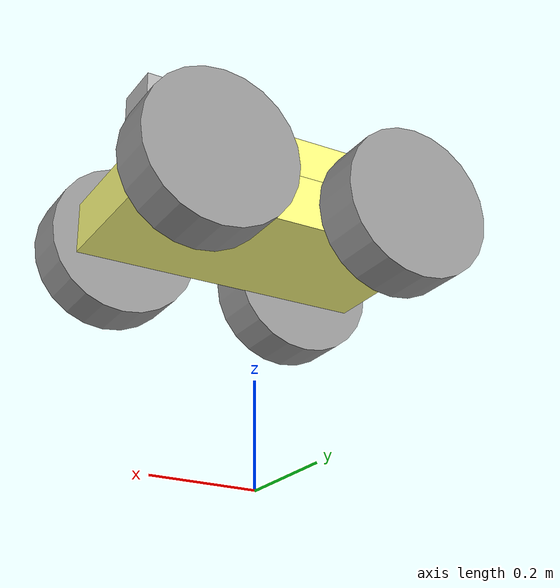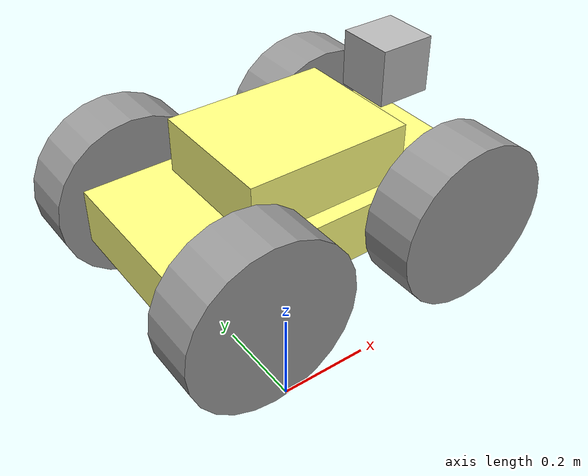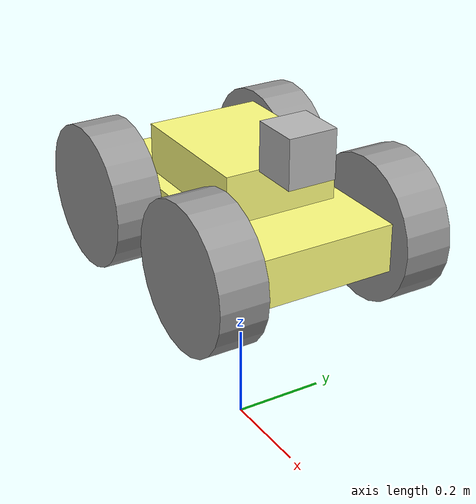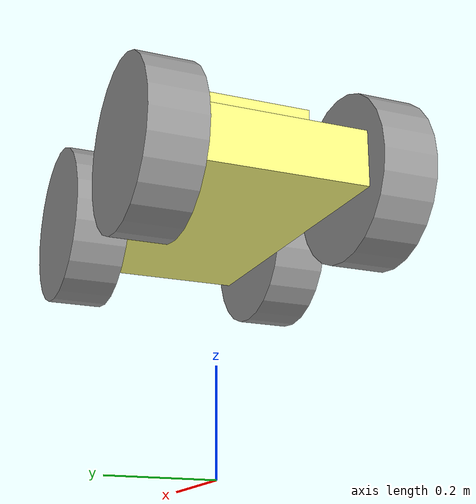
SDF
<?xml version='1.0'?>
<sdf version='1.7'>
  <model name='project_model_v1'>
    <link name='chassis'>
      <inertial>
        <mass>7</mass>
        <inertia>
          <ixx>0.0394333</ixx>
          <ixy>0</ixy>
          <ixz>0</ixz>
          <iyy>0.21491</iyy>
          <iyz>0</iyz>
          <izz>0.242677</izz>
        </inertia>
        <pose>0 0 0 0 -0 0</pose>
      </inertial>
      <pose>0 0 0.5 0 -0 0</pose>
      <self_collide>0</self_collide>
      <enable_wind>0</enable_wind>
      <kinematic>0</kinematic>
      <gravity>1</gravity>
      <visual name='visual'>
        <pose>0 0 0 0 -0 0</pose>
        <geometry>
          <box>
            <size>0.59868 0.3 0.1</size>
          </box>
        </geometry>
        <material>
          <lighting>1</lighting>
          <script>
            <uri>file://media/materials/scripts/gazebo.material</uri>
            <name>Gazebo/Grey</name>
          </script>
          <shader type='pixel'>
            <normal_map>__default__</normal_map>
          </shader>
          <emissive>0 0 0 1</emissive>
          <ambient>1 1 0.5 1</ambient>
          <diffuse>1 1 0.5 1</diffuse>
          <specular>0.01 0.01 0.01 1</specular>
        </material>
        <transparency>0</transparency>
        <cast_shadows>1</cast_shadows>
      </visual>
      <visual name='ModelPreview_1::chassis::visual_1'>
        <pose>0 0 0 0 -0 0</pose>
        <geometry>
          <box>
            <size>0.59868 0.3 0.1</size>
          </box>
        </geometry>
        <material>
          <lighting>1</lighting>
          <script>
            <uri>file://media/materials/scripts/gazebo.material</uri>
            <name>Gazebo/Grey</name>
          </script>
          <shader type='pixel'>
            <normal_map>__default__</normal_map>
          </shader>
          <emissive>0 0 0 1</emissive>
          <ambient>1 1 0.5 1</ambient>
          <diffuse>1 1 0.5 1</diffuse>
          <specular>0.01 0.01 0.01 1</specular>
        </material>
        <transparency>0</transparency>
        <cast_shadows>1</cast_shadows>
      </visual>
      <collision name='collision'>
        <laser_retro>0</laser_retro>
        <max_contacts>10</max_contacts>
        <pose>0 0 0 0 -0 0</pose>
        <geometry>
          <box>
            <size>0.59868 0.24 0.1</size>
          </box>
        </geometry>
        <surface>
          <friction>
            <ode>
              <mu>1</mu>
              <mu2>1</mu2>
              <fdir1>0 0 0</fdir1>
              <slip1>0</slip1>
              <slip2>0</slip2>
            </ode>
            <torsional>
              <coefficient>1</coefficient>
              <patch_radius>0</patch_radius>
              <surface_radius>0</surface_radius>
              <use_patch_radius>1</use_patch_radius>
              <ode>
                <slip>0</slip>
              </ode>
            </torsional>
          </friction>
          <bounce>
            <restitution_coefficient>0</restitution_coefficient>
            <threshold>1e+06</threshold>
          </bounce>
          <contact>
            <collide_without_contact>0</collide_without_contact>
            <collide_without_contact_bitmask>1</collide_without_contact_bitmask>
            <collide_bitmask>1</collide_bitmask>
            <ode>
              <soft_cfm>0</soft_cfm>
              <soft_erp>0.2</soft_erp>
              <kp>1e+13</kp>
              <kd>1</kd>
              <max_vel>0.01</max_vel>
              <min_depth>0</min_depth>
            </ode>
            <bullet>
              <split_impulse>1</split_impulse>
              <split_impulse_penetration_threshold>-0.01</split_impulse_penetration_threshold>
              <soft_cfm>0</soft_cfm>
              <soft_erp>0.2</soft_erp>
              <kp>1e+13</kp>
              <kd>1</kd>
            </bullet>
          </contact>
        </surface>
      </collision>
    </link>
    <link name='left_back_wheel'>
      <inertial>
        <mass>1</mass>
        <inertia>
          <ixx>0.00645833</ixx>
          <ixy>0</ixy>
          <ixz>0</ixz>
          <iyy>0.00645833</iyy>
          <iyz>0</iyz>
          <izz>0.01125</izz>
        </inertia>
        <pose>0 0 0 0 -0 0</pose>
      </inertial>
      <pose>-0.2 0.2 0.5 1.5707 2.8e-05 0.004847</pose>
      <gravity>1</gravity>
      <self_collide>0</self_collide>
      <kinematic>0</kinematic>
      <enable_wind>0</enable_wind>
      <visual name='visual'>
        <pose>0 0 0 0 -0 0</pose>
        <geometry>
          <cylinder>
            <radius>0.15</radius>
            <length>0.1</length>
          </cylinder>
        </geometry>
        <material>
          <lighting>1</lighting>
          <script>
            <uri>file://media/materials/scripts/gazebo.material</uri>
            <name>Gazebo/Grey</name>
          </script>
          <shader type='pixel'>
            <normal_map>__default__</normal_map>
          </shader>
          <ambient>0 0 0 1</ambient>
          <diffuse>0 0 0 1</diffuse>
          <specular>0.01 0.01 0.01 1</specular>
          <emissive>0 0 0 1</emissive>
        </material>
        <transparency>0</transparency>
        <cast_shadows>1</cast_shadows>
      </visual>
      <collision name='collision'>
        <laser_retro>0</laser_retro>
        <max_contacts>10</max_contacts>
        <pose>0 0 0 0 -0 0</pose>
        <geometry>
          <cylinder>
            <radius>0.15</radius>
            <length>0.1</length>
          </cylinder>
        </geometry>
        <surface>
          <friction>
            <ode>
              <mu>1</mu>
              <mu2>1</mu2>
              <fdir1>0 0 0</fdir1>
              <slip1>0</slip1>
              <slip2>0</slip2>
            </ode>
            <torsional>
              <coefficient>1</coefficient>
              <patch_radius>0</patch_radius>
              <surface_radius>0</surface_radius>
              <use_patch_radius>1</use_patch_radius>
              <ode>
                <slip>0</slip>
              </ode>
            </torsional>
          </friction>
          <bounce>
            <restitution_coefficient>0</restitution_coefficient>
            <threshold>1e+06</threshold>
          </bounce>
          <contact>
            <collide_without_contact>0</collide_without_contact>
            <collide_without_contact_bitmask>1</collide_without_contact_bitmask>
            <collide_bitmask>1</collide_bitmask>
            <ode>
              <soft_cfm>0</soft_cfm>
              <soft_erp>0.2</soft_erp>
              <kp>1e+13</kp>
              <kd>1</kd>
              <max_vel>0.01</max_vel>
              <min_depth>0</min_depth>
            </ode>
            <bullet>
              <split_impulse>1</split_impulse>
              <split_impulse_penetration_threshold>-0.01</split_impulse_penetration_threshold>
              <soft_cfm>0</soft_cfm>
              <soft_erp>0.2</soft_erp>
              <kp>1e+13</kp>
              <kd>1</kd>
            </bullet>
          </contact>
        </surface>
      </collision>
    </link>
    <link name='left_wheel'>
      <inertial>
        <mass>1</mass>
        <inertia>
          <ixx>0.00645833</ixx>
          <ixy>0</ixy>
          <ixz>0</ixz>
          <iyy>0.00645833</iyy>
          <iyz>0</iyz>
          <izz>0.01125</izz>
        </inertia>
        <pose>0 0 0 0 -0 0</pose>
      </inertial>
      <pose>0.2 0.2 0.5 1.5707 -0 0</pose>
      <gravity>1</gravity>
      <self_collide>0</self_collide>
      <kinematic>0</kinematic>
      <enable_wind>0</enable_wind>
      <visual name='visual'>
        <pose>0 0 0 0 -0 0</pose>
        <geometry>
          <cylinder>
            <radius>0.15</radius>
            <length>0.1</length>
          </cylinder>
        </geometry>
        <material>
          <lighting>1</lighting>
          <script>
            <uri>file://media/materials/scripts/gazebo.material</uri>
            <name>Gazebo/Grey</name>
          </script>
          <shader type='pixel'>
            <normal_map>__default__</normal_map>
          </shader>
          <ambient>0 0 0 1</ambient>
          <diffuse>0 0 0 1</diffuse>
          <specular>0.01 0.01 0.01 1</specular>
          <emissive>0 0 0 1</emissive>
        </material>
        <transparency>0</transparency>
        <cast_shadows>1</cast_shadows>
      </visual>
      <collision name='collision'>
        <laser_retro>0</laser_retro>
        <max_contacts>10</max_contacts>
        <pose>0 0 0 0 -0 0</pose>
        <geometry>
          <cylinder>
            <radius>0.15</radius>
            <length>0.1</length>
          </cylinder>
        </geometry>
        <surface>
          <friction>
            <ode>
              <mu>1</mu>
              <mu2>1</mu2>
              <fdir1>0 0 0</fdir1>
              <slip1>0</slip1>
              <slip2>0</slip2>
            </ode>
            <torsional>
              <coefficient>1</coefficient>
              <patch_radius>0</patch_radius>
              <surface_radius>0</surface_radius>
              <use_patch_radius>1</use_patch_radius>
              <ode>
                <slip>0</slip>
              </ode>
            </torsional>
          </friction>
          <bounce>
            <restitution_coefficient>0</restitution_coefficient>
            <threshold>1e+06</threshold>
          </bounce>
          <contact>
            <collide_without_contact>0</collide_without_contact>
            <collide_without_contact_bitmask>1</collide_without_contact_bitmask>
            <collide_bitmask>1</collide_bitmask>
            <ode>
              <soft_cfm>0</soft_cfm>
              <soft_erp>0.2</soft_erp>
              <kp>1e+13</kp>
              <kd>1</kd>
              <max_vel>0.01</max_vel>
              <min_depth>0</min_depth>
            </ode>
            <bullet>
              <split_impulse>1</split_impulse>
              <split_impulse_penetration_threshold>-0.01</split_impulse_penetration_threshold>
              <soft_cfm>0</soft_cfm>
              <soft_erp>0.2</soft_erp>
              <kp>1e+13</kp>
              <kd>1</kd>
            </bullet>
          </contact>
        </surface>
      </collision>
    </link>
    <link name='link_0'>
      <inertial>
        <mass>3</mass>
        <inertia>
          <ixx>0.0169</ixx>
          <ixy>0</ixy>
          <ixz>0</ixz>
          <iyy>0.025</iyy>
          <iyz>0</iyz>
          <izz>0.0369</izz>
        </inertia>
        <pose>0 0 0 0 -0 0</pose>
      </inertial>
      <pose>0 0 0.6 0 -0 0</pose>
      <gravity>1</gravity>
      <self_collide>0</self_collide>
      <kinematic>0</kinematic>
      <enable_wind>0</enable_wind>
      <visual name='visual'>
        <pose>0 0 0 0 -0 0</pose>
        <geometry>
          <box>
            <size>0.3 0.24 0.1</size>
          </box>
        </geometry>
        <material>
          <lighting>1</lighting>
          <script>
            <uri>file://media/materials/scripts/gazebo.material</uri>
            <name>Gazebo/Grey</name>
          </script>
          <shader type='pixel'>
            <normal_map>__default__</normal_map>
          </shader>
          <ambient>1 1 0.5 1</ambient>
          <diffuse>1 1 0.5 1</diffuse>
          <specular>0.01 0.01 0.01 1</specular>
          <emissive>0 0 0 1</emissive>
        </material>
        <transparency>0</transparency>
        <cast_shadows>1</cast_shadows>
      </visual>
      <collision name='collision'>
        <laser_retro>0</laser_retro>
        <max_contacts>10</max_contacts>
        <pose>0 0 0 0 -0 0</pose>
        <geometry>
          <box>
            <size>0.3 0.24 0.1</size>
          </box>
        </geometry>
        <surface>
          <friction>
            <ode>
              <mu>1</mu>
              <mu2>1</mu2>
              <fdir1>0 0 0</fdir1>
              <slip1>0</slip1>
              <slip2>0</slip2>
            </ode>
            <torsional>
              <coefficient>1</coefficient>
              <patch_radius>0</patch_radius>
              <surface_radius>0</surface_radius>
              <use_patch_radius>1</use_patch_radius>
              <ode>
                <slip>0</slip>
              </ode>
            </torsional>
          </friction>
          <bounce>
            <restitution_coefficient>0</restitution_coefficient>
            <threshold>1e+06</threshold>
          </bounce>
          <contact>
            <collide_without_contact>0</collide_without_contact>
            <collide_without_contact_bitmask>1</collide_without_contact_bitmask>
            <collide_bitmask>1</collide_bitmask>
            <ode>
              <soft_cfm>0</soft_cfm>
              <soft_erp>0.2</soft_erp>
              <kp>1e+13</kp>
              <kd>1</kd>
              <max_vel>0.01</max_vel>
              <min_depth>0</min_depth>
            </ode>
            <bullet>
              <split_impulse>1</split_impulse>
              <split_impulse_penetration_threshold>-0.01</split_impulse_penetration_threshold>
              <soft_cfm>0</soft_cfm>
              <soft_erp>0.2</soft_erp>
              <kp>1e+13</kp>
              <kd>1</kd>
            </bullet>
          </contact>
        </surface>
      </collision>
    </link>
    <link name='right_back_wheel'>
      <inertial>
        <mass>1</mass>
        <inertia>
          <ixx>0.00645833</ixx>
          <ixy>0</ixy>
          <ixz>0</ixz>
          <iyy>0.00645833</iyy>
          <iyz>0</iyz>
          <izz>0.01125</izz>
        </inertia>
        <pose>0 0 0 0 -0 0</pose>
      </inertial>
      <pose>-0.2 -0.2 0.5 1.57071 2.8e-05 0.004847</pose>
      <gravity>1</gravity>
      <self_collide>0</self_collide>
      <kinematic>0</kinematic>
      <enable_wind>0</enable_wind>
      <visual name='visual'>
        <pose>0 0 0 0 -0 0</pose>
        <geometry>
          <cylinder>
            <radius>0.15</radius>
            <length>0.1</length>
          </cylinder>
        </geometry>
        <material>
          <lighting>1</lighting>
          <script>
            <uri>file://media/materials/scripts/gazebo.material</uri>
            <name>Gazebo/Grey</name>
          </script>
          <shader type='pixel'>
            <normal_map>__default__</normal_map>
          </shader>
          <ambient>0 0 0 1</ambient>
          <diffuse>0 0 0 1</diffuse>
          <specular>0.01 0.01 0.01 1</specular>
          <emissive>0 0 0 1</emissive>
        </material>
        <transparency>0</transparency>
        <cast_shadows>1</cast_shadows>
      </visual>
      <collision name='collision'>
        <laser_retro>0</laser_retro>
        <max_contacts>10</max_contacts>
        <pose>0 0 0 0 -0 0</pose>
        <geometry>
          <cylinder>
            <radius>0.15</radius>
            <length>0.1</length>
          </cylinder>
        </geometry>
        <surface>
          <friction>
            <ode>
              <mu>1</mu>
              <mu2>1</mu2>
              <fdir1>0 0 0</fdir1>
              <slip1>0</slip1>
              <slip2>0</slip2>
            </ode>
            <torsional>
              <coefficient>1</coefficient>
              <patch_radius>0</patch_radius>
              <surface_radius>0</surface_radius>
              <use_patch_radius>1</use_patch_radius>
              <ode>
                <slip>0</slip>
              </ode>
            </torsional>
          </friction>
          <bounce>
            <restitution_coefficient>0</restitution_coefficient>
            <threshold>1e+06</threshold>
          </bounce>
          <contact>
            <collide_without_contact>0</collide_without_contact>
            <collide_without_contact_bitmask>1</collide_without_contact_bitmask>
            <collide_bitmask>1</collide_bitmask>
            <ode>
              <soft_cfm>0</soft_cfm>
              <soft_erp>0.2</soft_erp>
              <kp>1e+13</kp>
              <kd>1</kd>
              <max_vel>0.01</max_vel>
              <min_depth>0</min_depth>
            </ode>
            <bullet>
              <split_impulse>1</split_impulse>
              <split_impulse_penetration_threshold>-0.01</split_impulse_penetration_threshold>
              <soft_cfm>0</soft_cfm>
              <soft_erp>0.2</soft_erp>
              <kp>1e+13</kp>
              <kd>1</kd>
            </bullet>
          </contact>
        </surface>
      </collision>
    </link>
    <link name='right_wheel'>
      <inertial>
        <mass>1</mass>
        <inertia>
          <ixx>0.00645833</ixx>
          <ixy>0</ixy>
          <ixz>0</ixz>
          <iyy>0.00645833</iyy>
          <iyz>0</iyz>
          <izz>0.01125</izz>
        </inertia>
        <pose>0 0 0 0 -0 0</pose>
      </inertial>
      <pose>0.2 -0.2 0.5 1.5707 -0 0</pose>
      <gravity>1</gravity>
      <self_collide>0</self_collide>
      <kinematic>0</kinematic>
      <enable_wind>0</enable_wind>
      <visual name='visual'>
        <pose>0 0 0 0 -0 0</pose>
        <geometry>
          <cylinder>
            <radius>0.15</radius>
            <length>0.1</length>
          </cylinder>
        </geometry>
        <material>
          <lighting>1</lighting>
          <script>
            <uri>file://media/materials/scripts/gazebo.material</uri>
            <name>Gazebo/Grey</name>
          </script>
          <shader type='pixel'>
            <normal_map>__default__</normal_map>
          </shader>
          <ambient>0 0 0 1</ambient>
          <diffuse>0 0 0 1</diffuse>
          <specular>0.01 0.01 0.01 1</specular>
          <emissive>0 0 0 1</emissive>
        </material>
        <transparency>0</transparency>
        <cast_shadows>1</cast_shadows>
      </visual>
      <collision name='collision'>
        <laser_retro>0</laser_retro>
        <max_contacts>10</max_contacts>
        <pose>0 0 0 0 -0 0</pose>
        <geometry>
          <cylinder>
            <radius>0.15</radius>
            <length>0.1</length>
          </cylinder>
        </geometry>
        <surface>
          <friction>
            <ode>
              <mu>1</mu>
              <mu2>1</mu2>
              <fdir1>0 0 0</fdir1>
              <slip1>0</slip1>
              <slip2>0</slip2>
            </ode>
            <torsional>
              <coefficient>1</coefficient>
              <patch_radius>0</patch_radius>
              <surface_radius>0</surface_radius>
              <use_patch_radius>1</use_patch_radius>
              <ode>
                <slip>0</slip>
              </ode>
            </torsional>
          </friction>
          <bounce>
            <restitution_coefficient>0</restitution_coefficient>
            <threshold>1e+06</threshold>
          </bounce>
          <contact>
            <collide_without_contact>0</collide_without_contact>
            <collide_without_contact_bitmask>1</collide_without_contact_bitmask>
            <collide_bitmask>1</collide_bitmask>
            <ode>
              <soft_cfm>0</soft_cfm>
              <soft_erp>0.2</soft_erp>
              <kp>1e+13</kp>
              <kd>1</kd>
              <max_vel>0.01</max_vel>
              <min_depth>0</min_depth>
            </ode>
            <bullet>
              <split_impulse>1</split_impulse>
              <split_impulse_penetration_threshold>-0.01</split_impulse_penetration_threshold>
              <soft_cfm>0</soft_cfm>
              <soft_erp>0.2</soft_erp>
              <kp>1e+13</kp>
              <kd>1</kd>
            </bullet>
          </contact>
        </surface>
      </collision>
    </link>
    <model name='camera_model'>
      <pose>0.205013 -0.003476 0.698937 0 -0 0</pose>
      <link name='camera_link'>
        <inertial>
          <mass>0.1</mass>
          <inertia>
            <ixx>0.000166667</ixx>
            <iyy>0.000166667</iyy>
            <izz>0.000166667</izz>
            <ixy>0</ixy>
            <ixz>0</ixz>
            <iyz>0</iyz>
          </inertia>
          <pose>0 0 0 0 -0 0</pose>
        </inertial>
        <collision name='collision'>
          <geometry>
            <box>
              <size>0.1 0.1 0.1</size>
            </box>
          </geometry>
          <max_contacts>10</max_contacts>
          <surface>
            <contact>
              <ode/>
            </contact>
            <bounce/>
            <friction>
              <torsional>
                <ode/>
              </torsional>
              <ode/>
            </friction>
          </surface>
        </collision>
        <visual name='visual'>
          <geometry>
            <box>
              <size>0.1 0.1 0.1</size>
            </box>
          </geometry>
        </visual>
        <sensor name='lidar' type='ray'>
          <always_on>1</always_on>
          <visualize>1</visualize>
          <update_rate>5</update_rate>
          <ray>
            <scan>
              <horizontal>
                <samples>360</samples>
                <resolution>1</resolution>
                <min_angle>0</min_angle>
                <max_angle>6.28</max_angle>
              </horizontal>
              <vertical>
                <samples>1</samples>
                <min_angle>0</min_angle>
                <max_angle>0</max_angle>
              </vertical>
            </scan>
            <range>
              <min>0.12</min>
              <max>3.5</max>
              <resolution>0.015</resolution>
            </range>
            <noise>
              <type>gaussian</type>
              <mean>0</mean>
              <stddev>0.01</stddev>
            </noise>
          </ray>
          <plugin name='scan' filename='libgazebo_ros_ray_sensor.so'>
            <ros>
              <remapping>~/out:=scan</remapping>
            </ros>
            <output_type>sensor_msgs/LaserScan</output_type>
            <frame_name>lidar_link</frame_name>
          </plugin>
        </sensor>
        <self_collide>0</self_collide>
        <enable_wind>0</enable_wind>
        <kinematic>0</kinematic>
      </link>
    </model>
    <joint name='chassis_JOINT_0' type='fixed'>
      <parent>chassis</parent>
      <child>camera_model::camera_link</child>
      <pose>0 0 0 0 -0 0</pose>
      <physics>
        <ode>
          <limit>
            <cfm>0</cfm>
            <erp>0.2</erp>
          </limit>
          <suspension>
            <cfm>0</cfm>
            <erp>0.2</erp>
          </suspension>
        </ode>
      </physics>
    </joint>
    <joint name='left_back_wheel_joint' type='revolute'>
      <parent>chassis</parent>
      <child>left_back_wheel</child>
      <pose>0 0 0 0 -0 0</pose>
      <axis>
        <xyz>0 0 1</xyz>
        <limit>
          <lower>-1.79769e+308</lower>
          <upper>1.79769e+308</upper>
          <effort>-1</effort>
          <velocity>-1</velocity>
        </limit>
        <dynamics>
          <spring_reference>0</spring_reference>
          <spring_stiffness>0</spring_stiffness>
          <damping>0</damping>
          <friction>0</friction>
        </dynamics>
      </axis>
      <physics>
        <ode>
          <limit>
            <cfm>0</cfm>
            <erp>0.2</erp>
          </limit>
          <suspension>
            <cfm>0</cfm>
            <erp>0.2</erp>
          </suspension>
        </ode>
      </physics>
    </joint>
    <joint name='left_wheel_joint' type='revolute'>
      <parent>chassis</parent>
      <child>left_wheel</child>
      <pose>0 0 0 0 -0 0</pose>
      <axis>
        <xyz>0 0 1</xyz>
        <limit>
          <lower>-1.79769e+308</lower>
          <upper>1.79769e+308</upper>
          <effort>-1</effort>
          <velocity>-1</velocity>
        </limit>
        <dynamics>
          <spring_reference>0</spring_reference>
          <spring_stiffness>0</spring_stiffness>
          <damping>0</damping>
          <friction>0</friction>
        </dynamics>
      </axis>
      <physics>
        <ode>
          <limit>
            <cfm>0</cfm>
            <erp>0.2</erp>
          </limit>
          <suspension>
            <cfm>0</cfm>
            <erp>0.2</erp>
          </suspension>
        </ode>
      </physics>
    </joint>
    <joint name='link_0_JOINT_0' type='fixed'>
      <parent>chassis</parent>
      <child>link_0</child>
      <pose>0 0 0 0 -0 0</pose>
      <physics>
        <ode>
          <limit>
            <cfm>0</cfm>
            <erp>0.2</erp>
          </limit>
          <suspension>
            <cfm>0</cfm>
            <erp>0.2</erp>
          </suspension>
        </ode>
      </physics>
    </joint>
    <joint name='right_back_wheel_joint' type='revolute'>
      <parent>chassis</parent>
      <child>right_back_wheel</child>
      <pose>0 0 0 0 -0 0</pose>
      <axis>
        <xyz>0 0 1</xyz>
        <limit>
          <lower>-1.79769e+308</lower>
          <upper>1.79769e+308</upper>
          <effort>-1</effort>
          <velocity>-1</velocity>
        </limit>
        <dynamics>
          <spring_reference>0</spring_reference>
          <spring_stiffness>0</spring_stiffness>
          <damping>0</damping>
          <friction>0</friction>
        </dynamics>
      </axis>
      <physics>
        <ode>
          <limit>
            <cfm>0</cfm>
            <erp>0.2</erp>
          </limit>
          <suspension>
            <cfm>0</cfm>
            <erp>0.2</erp>
          </suspension>
        </ode>
      </physics>
    </joint>
    <joint name='right_wheel_joint' type='revolute'>
      <parent>chassis</parent>
      <child>right_wheel</child>
      <pose>0 0 0 0 -0 0</pose>
      <axis>
        <xyz>0 0 1</xyz>
        <limit>
          <lower>-1.79769e+308</lower>
          <upper>1.79769e+308</upper>
          <effort>-1</effort>
          <velocity>-1</velocity>
        </limit>
        <dynamics>
          <spring_reference>0</spring_reference>
          <spring_stiffness>0</spring_stiffness>
          <damping>0</damping>
          <friction>0</friction>
        </dynamics>
      </axis>
      <physics>
        <ode>
          <limit>
            <cfm>0</cfm>
            <erp>0.2</erp>
          </limit>
          <suspension>
            <cfm>0</cfm>
            <erp>0.2</erp>
          </suspension>
        </ode>
      </physics>
    </joint>
    <static>0</static>
    <allow_auto_disable>1</allow_auto_disable>
    <plugin name='diff_drive' filename='libgazebo_ros_diff_drive.so'>
      <ros>
        <namespace>/</namespace>
        <remapping>cmd_vel:=cmd_vel</remapping>
        <remapping>odom:=odom_demo</remapping>
      </ros>
      <num_wheel_pairs>2</num_wheel_pairs>
      <left_joint>left_wheel_joint</left_joint>
      <left_joint>left_back_wheel_joint</left_joint>
      <right_joint>right_wheel_joint</right_joint>
      <right_joint>right_back_wheel_joint</right_joint>
      <wheel_separation>1.25</wheel_separation>
      <wheel_diameter>0.3</wheel_diameter>
      <max_wheel_torque>20</max_wheel_torque>
      <max_wheel_acceleration>1.0</max_wheel_acceleration>
      <publish_odom>1</publish_odom>
      <publish_odom_tf>1</publish_odom_tf>
      <publish_wheel_tf>1</publish_wheel_tf>
      <odometry_frame>odom_demo</odometry_frame>
      <robot_base_frame>chassis</robot_base_frame>
    </plugin>
  </model>
</sdf>
